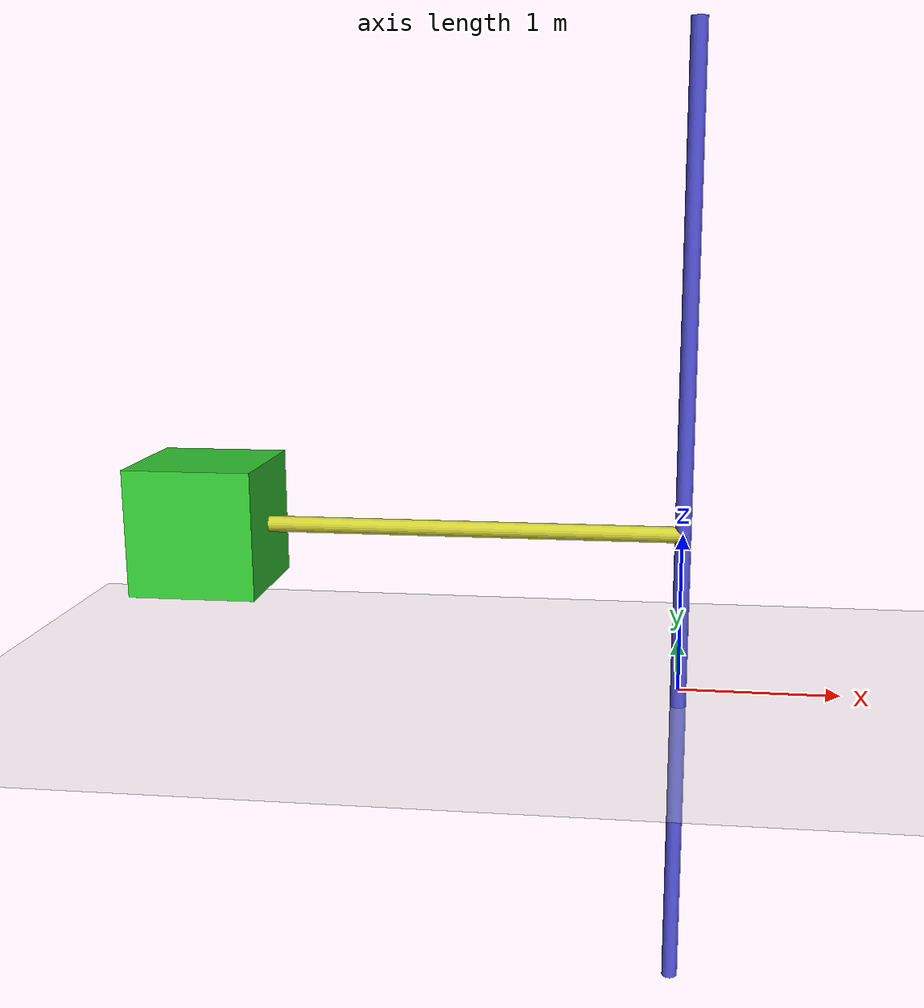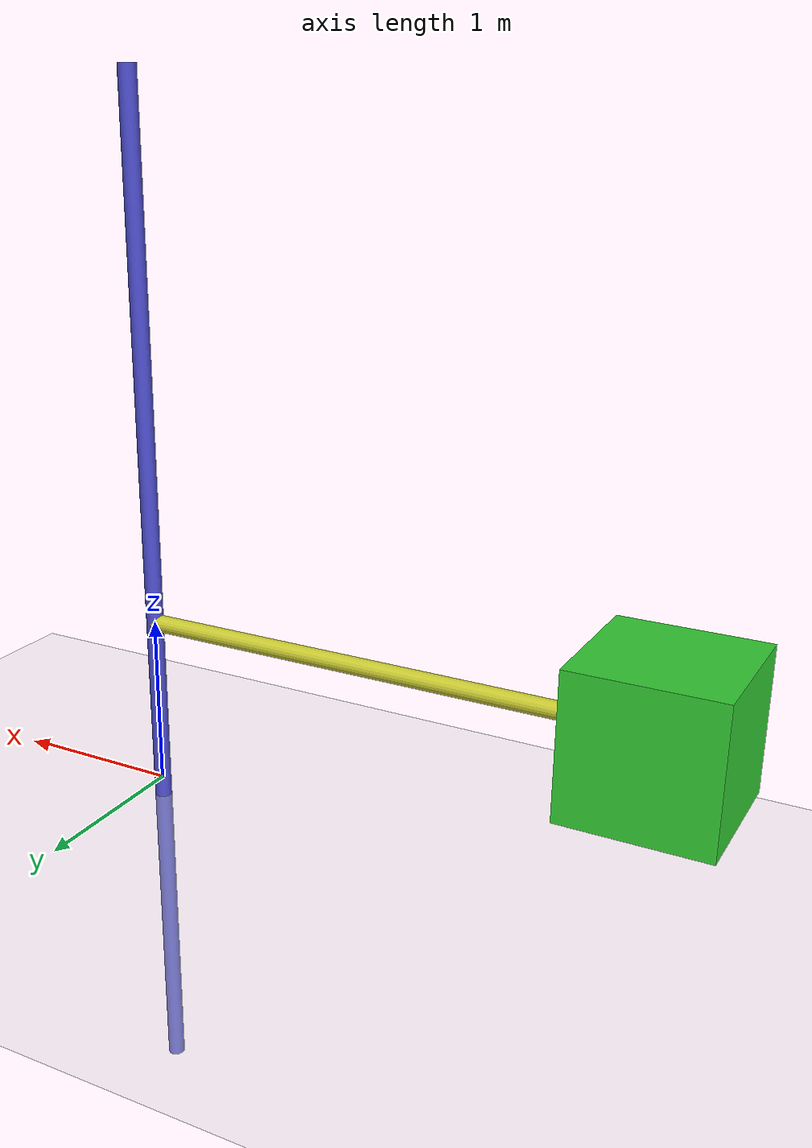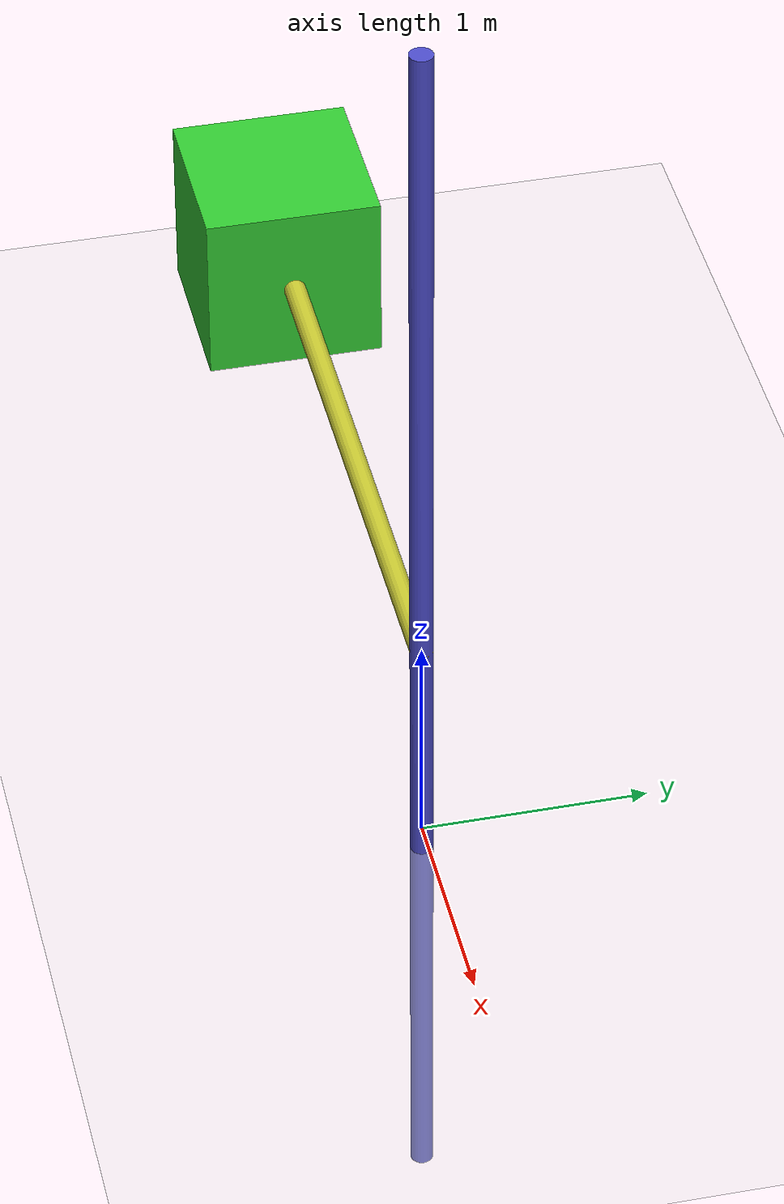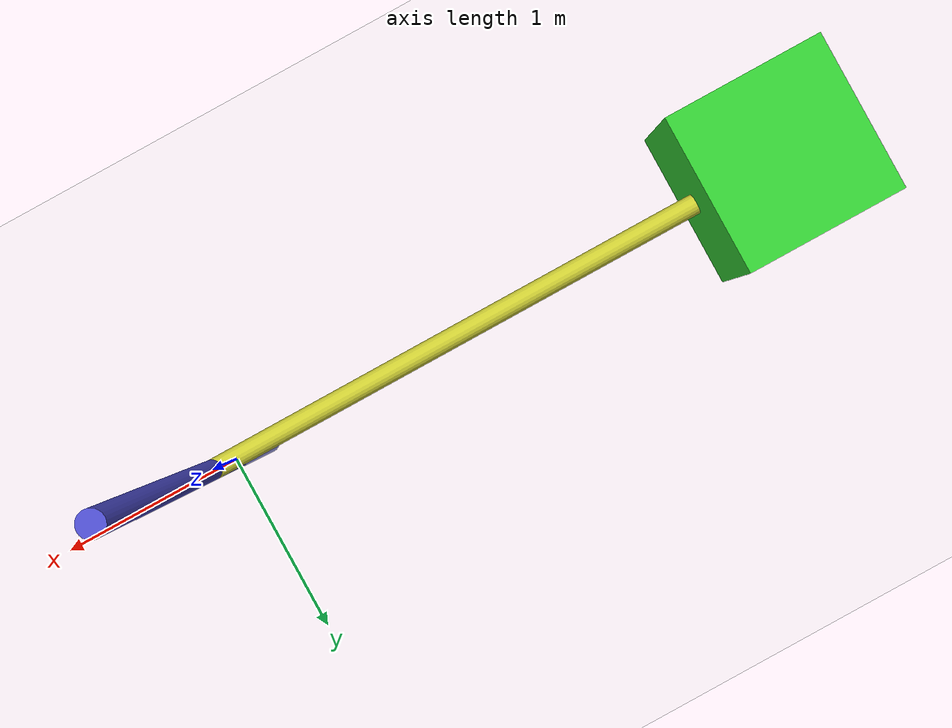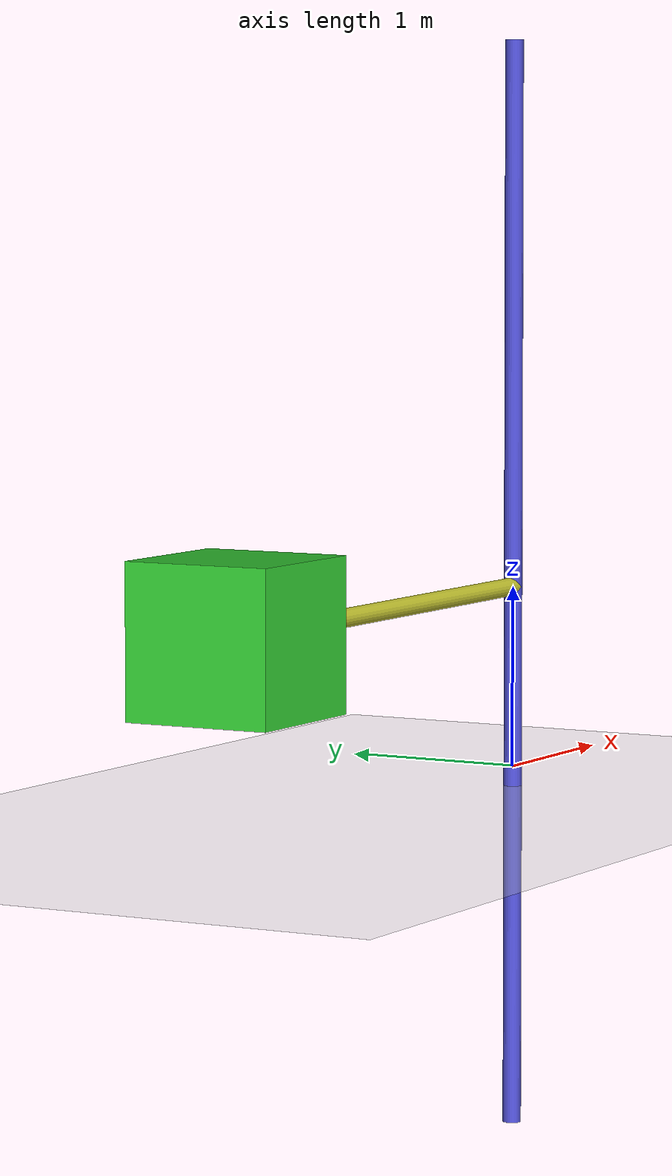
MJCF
<mujoco>
  <!-- Task guidance: Track the mass position over repeated time samples after a disturbance. Compare decay behavior between lower- and higher-damping trials before choosing the numeric damping code. -->
  <option gravity="0 0 -9.81"/>
  <worldbody>
    <!-- Mass (Green Box) -->
    <body name="object_1" pos="-3 0 1">
      <geom type="box" size="0.4 0.4 0.4" density="1" rgba="0.2 0.8 0.2 1"/>
      <joint name="object_1_joint" type="free"/>
    </body>
    <!-- Spring (Yellow Capsule) -->
    <body name="object_2" pos="0 0 1">
      <geom type="capsule" fromto="0 0 0 -3 0 0" size="0.05" rgba="0.8 0.8 0.2 1"/>
    </body>
    <!-- Damper (Blue Cylinder) -->
    <body name="object_3" pos="0 0 1">
      <geom type="cylinder" size="0.05 3" rgba="0.3 0.3 0.8 1"/>
    </body>
    <!-- Ground Surface -->
    <body name="object_4" pos="-10 0 -0.1">
      <geom type="plane" size="25 25 0.1" rgba="0.9 0.9 0.9 1" friction="0.3 0.3 0.3"/>
    </body>
  </worldbody>
</mujoco>
